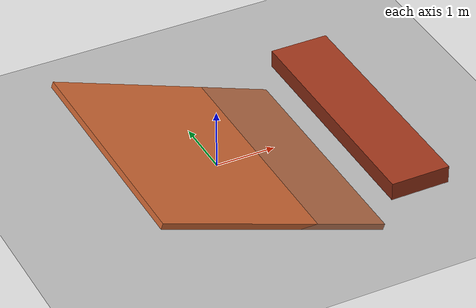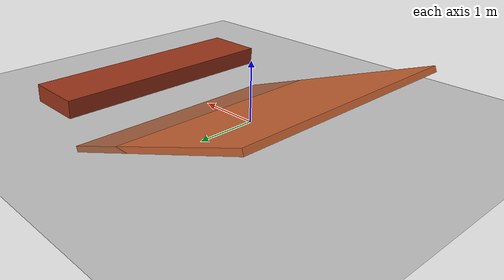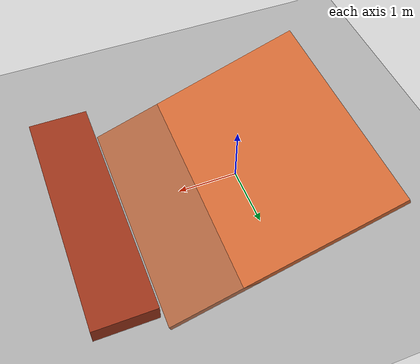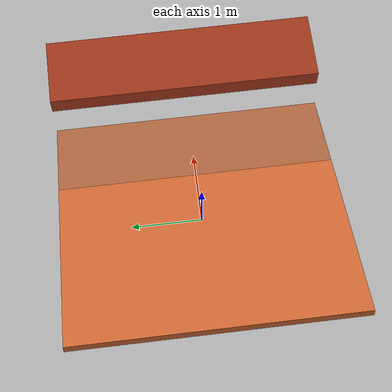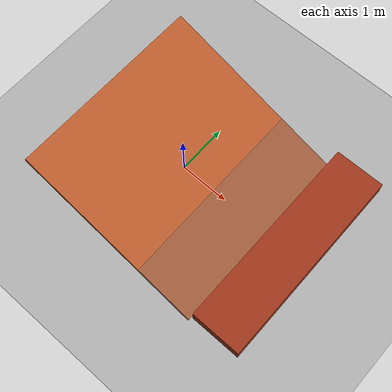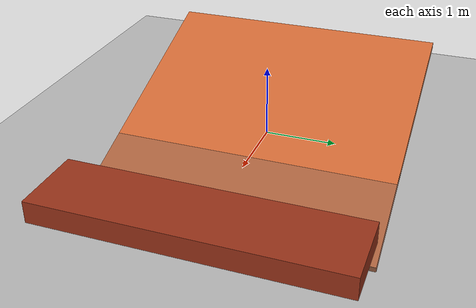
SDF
<sdf version="1.8">
    <!-- Sloped terrain (20 deg grade, >15 deg unsafe threshold) and stepped drop-offs (0.15m), labeled UNSAFE -->
    <world name="testbed_beta">
        <physics name="1ms" type="ignored">
        <max_step_size>0.001</max_step_size>
        <real_time_factor>1.0</real_time_factor>
        </physics>

        <light type="directional" name="sun">
        <cast_shadows>true</cast_shadows>
        <pose>0 0 15 0 0 0</pose>
        <diffuse>0.9 0.9 0.9 1</diffuse>
        <specular>0.2 0.2 0.2 1</specular>
        <direction>-0.5 0.1 -0.9</direction>
        </light>

        <model name="ground_plane">
        <static>true</static>
        <link name="link">
            <collision name="collision">
            <geometry>
                <plane>
                <normal>0 0 1</normal>
                <size>100 100</size>
                </plane>
            </geometry>
            </collision>
            <visual name="visual">
            <geometry>
                <plane>
                <normal>0 0 1</normal>
                <size>100 100</size>
                </plane>
            </geometry>
            <material>
                <ambient>0.3 0.3 0.3 1</ambient>
                <diffuse>0.4 0.4 0.4 1</diffuse>
            </material>
            </visual>
        </link>
        </model>

        <!-- 20-Degree Inclined Ramp -->
        <model name="sloped_terrain">
        <static>true</static>
        <pose>0.0 0.0 0.2 0.0 0.349066 0.0</pose>
        <link name="sloped_link">
            <collision name="collision">
            <geometry>
                <box>
                <size>4.0 4.0 0.1</size>
                </box>
            </geometry>
            </collision>
            <visual name="visual">
            <geometry>
                <box>
                <size>4.0 4.0 0.1</size>
                </box>
            </geometry>
            <material>
                <ambient>0.8 0.4 0.2 1</ambient>
                <diffuse>0.8 0.4 0.2 1</diffuse>
            </material>
            </visual>
        </link>
        </model>

        <!-- Stepped Curb Drop-Off -->
        <model name="stepped_curb_1">
        <static>true</static>
        <pose>2.5 0.0 0.15 0 0 0</pose>
        <link name="curb_link">
            <collision name="collision">
            <geometry>
                <box>
                <size>1.0 4.0 0.30</size>
                </box>
            </geometry>
            </collision>
            <visual name="visual">
            <geometry>
                <box>
                <size>1.0 4.0 0.30</size>
                </box>
            </geometry>
            <material>
                <ambient>0.6 0.2 0.1 1</ambient>
                <diffuse>0.6 0.2 0.1 1</diffuse>
            </material>
            </visual>
        </link>
        </model>
    </world>
</sdf>
